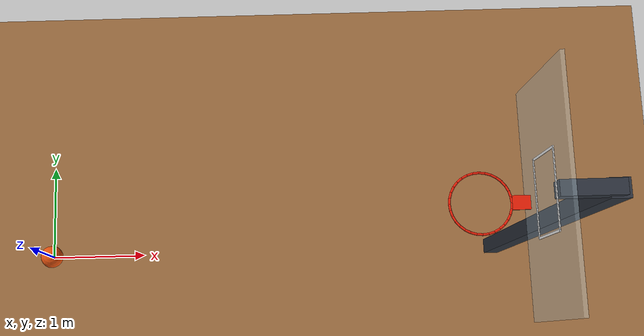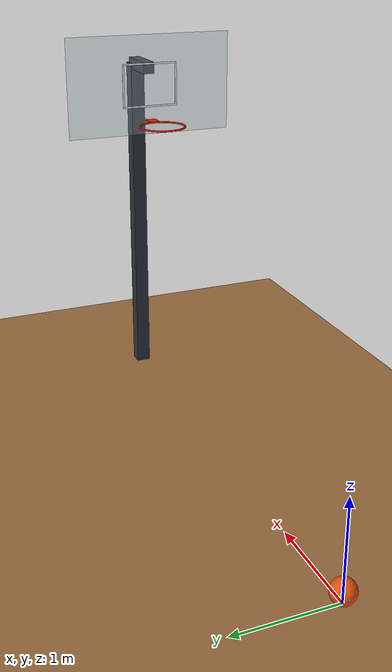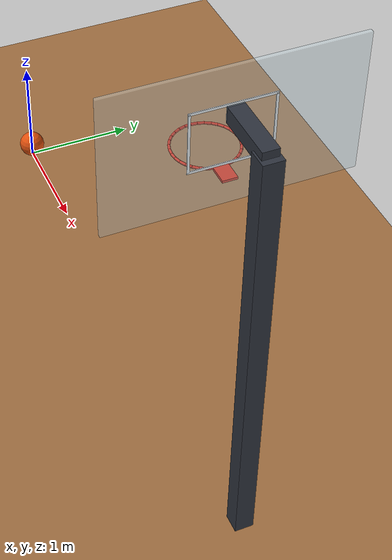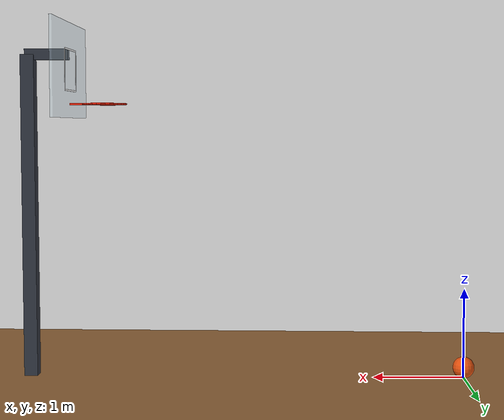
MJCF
<mujoco model="regulation_basketball_shot">
  <compiler angle="radian" autolimits="true"/>
  <option timestep="0.002" gravity="0 0 -9.81" integrator="implicitfast" cone="elliptic" solver="Newton" iterations="100" tolerance="1e-10" noslip_iterations="10"/>
  <visual>
    <global azimuth="120" elevation="-20"/>
    <headlight ambient="0.35 0.35 0.35" diffuse="0.65 0.65 0.65" specular="0.2 0.2 0.2"/>
  </visual>

  <worldbody>
    <light name="court_light" pos="2 -4 8" dir="0.2 0.3 -1" directional="true"/>
    <camera name="shot_view" pos="7 -11 6" xyaxes="0.939793 0.341743 0 -0.125861 0.346119 0.929755"/>

    <geom name="floor" type="plane" pos="0 0 0" size="12 8 0.1" condim="6" friction="0.9 0.01 0.02" rgba="0.62 0.43 0.25 1"/>

    <!-- Men's regulation-size basketball: 0.754 m circumference, 0.624 kg. -->
    <body name="ball" pos="0 0 0.12">
      <freejoint name="ball_free"/>
      <geom name="ball" type="sphere" size="0.12" mass="0.624" condim="6" friction="0.9 0.01 0.02" rgba="0.9 0.32 0.055 1"/>
    </body>

    <!-- Rim center is 4 m from the launch point and 3.05 m above the floor. -->
    <!-- Capsule centerline radius 0.2381 m; tube radius 0.0095 m. -->
    <body name="hoop" pos="4 0 3.05">
      <geom name="rim_00" type="capsule" fromto="0.238100 0 0 0.233525 0.046451 0" size="0.0095" rgba="0.9 0.12 0.025 1"/>
      <geom name="rim_01" type="capsule" fromto="0.233525 0.046451 0 0.219976 0.091117 0" size="0.0095" rgba="0.9 0.12 0.025 1"/>
      <geom name="rim_02" type="capsule" fromto="0.219976 0.091117 0 0.197973 0.132281 0" size="0.0095" rgba="0.9 0.12 0.025 1"/>
      <geom name="rim_03" type="capsule" fromto="0.197973 0.132281 0 0.168362 0.168362 0" size="0.0095" rgba="0.9 0.12 0.025 1"/>
      <geom name="rim_04" type="capsule" fromto="0.168362 0.168362 0 0.132281 0.197973 0" size="0.0095" rgba="0.9 0.12 0.025 1"/>
      <geom name="rim_05" type="capsule" fromto="0.132281 0.197973 0 0.091117 0.219976 0" size="0.0095" rgba="0.9 0.12 0.025 1"/>
      <geom name="rim_06" type="capsule" fromto="0.091117 0.219976 0 0.046451 0.233525 0" size="0.0095" rgba="0.9 0.12 0.025 1"/>
      <geom name="rim_07" type="capsule" fromto="0.046451 0.233525 0 0 0.238100 0" size="0.0095" rgba="0.9 0.12 0.025 1"/>
      <geom name="rim_08" type="capsule" fromto="0 0.238100 0 -0.046451 0.233525 0" size="0.0095" rgba="0.9 0.12 0.025 1"/>
      <geom name="rim_09" type="capsule" fromto="-0.046451 0.233525 0 -0.091117 0.219976 0" size="0.0095" rgba="0.9 0.12 0.025 1"/>
      <geom name="rim_10" type="capsule" fromto="-0.091117 0.219976 0 -0.132281 0.197973 0" size="0.0095" rgba="0.9 0.12 0.025 1"/>
      <geom name="rim_11" type="capsule" fromto="-0.132281 0.197973 0 -0.168362 0.168362 0" size="0.0095" rgba="0.9 0.12 0.025 1"/>
      <geom name="rim_12" type="capsule" fromto="-0.168362 0.168362 0 -0.197973 0.132281 0" size="0.0095" rgba="0.9 0.12 0.025 1"/>
      <geom name="rim_13" type="capsule" fromto="-0.197973 0.132281 0 -0.219976 0.091117 0" size="0.0095" rgba="0.9 0.12 0.025 1"/>
      <geom name="rim_14" type="capsule" fromto="-0.219976 0.091117 0 -0.233525 0.046451 0" size="0.0095" rgba="0.9 0.12 0.025 1"/>
      <geom name="rim_15" type="capsule" fromto="-0.233525 0.046451 0 -0.238100 0 0" size="0.0095" rgba="0.9 0.12 0.025 1"/>
      <geom name="rim_16" type="capsule" fromto="-0.238100 0 0 -0.233525 -0.046451 0" size="0.0095" rgba="0.9 0.12 0.025 1"/>
      <geom name="rim_17" type="capsule" fromto="-0.233525 -0.046451 0 -0.219976 -0.091117 0" size="0.0095" rgba="0.9 0.12 0.025 1"/>
      <geom name="rim_18" type="capsule" fromto="-0.219976 -0.091117 0 -0.197973 -0.132281 0" size="0.0095" rgba="0.9 0.12 0.025 1"/>
      <geom name="rim_19" type="capsule" fromto="-0.197973 -0.132281 0 -0.168362 -0.168362 0" size="0.0095" rgba="0.9 0.12 0.025 1"/>
      <geom name="rim_20" type="capsule" fromto="-0.168362 -0.168362 0 -0.132281 -0.197973 0" size="0.0095" rgba="0.9 0.12 0.025 1"/>
      <geom name="rim_21" type="capsule" fromto="-0.132281 -0.197973 0 -0.091117 -0.219976 0" size="0.0095" rgba="0.9 0.12 0.025 1"/>
      <geom name="rim_22" type="capsule" fromto="-0.091117 -0.219976 0 -0.046451 -0.233525 0" size="0.0095" rgba="0.9 0.12 0.025 1"/>
      <geom name="rim_23" type="capsule" fromto="-0.046451 -0.233525 0 0 -0.238100 0" size="0.0095" rgba="0.9 0.12 0.025 1"/>
      <geom name="rim_24" type="capsule" fromto="0 -0.238100 0 0.046451 -0.233525 0" size="0.0095" rgba="0.9 0.12 0.025 1"/>
      <geom name="rim_25" type="capsule" fromto="0.046451 -0.233525 0 0.091117 -0.219976 0" size="0.0095" rgba="0.9 0.12 0.025 1"/>
      <geom name="rim_26" type="capsule" fromto="0.091117 -0.219976 0 0.132281 -0.197973 0" size="0.0095" rgba="0.9 0.12 0.025 1"/>
      <geom name="rim_27" type="capsule" fromto="0.132281 -0.197973 0 0.168362 -0.168362 0" size="0.0095" rgba="0.9 0.12 0.025 1"/>
      <geom name="rim_28" type="capsule" fromto="0.168362 -0.168362 0 0.197973 -0.132281 0" size="0.0095" rgba="0.9 0.12 0.025 1"/>
      <geom name="rim_29" type="capsule" fromto="0.197973 -0.132281 0 0.219976 -0.091117 0" size="0.0095" rgba="0.9 0.12 0.025 1"/>
      <geom name="rim_30" type="capsule" fromto="0.219976 -0.091117 0 0.233525 -0.046451 0" size="0.0095" rgba="0.9 0.12 0.025 1"/>
      <geom name="rim_31" type="capsule" fromto="0.233525 -0.046451 0 0.238100 0 0" size="0.0095" rgba="0.9 0.12 0.025 1"/>
      <geom name="rim_mount" type="box" pos="0.31 0 0" size="0.071 0.055 0.0095" rgba="0.9 0.12 0.025 1"/>
    </body>

    <body name="backboard" pos="4.396 0 3.425">
      <geom name="backboard_panel" type="box" size="0.015 0.9 0.525" rgba="0.8 0.9 0.95 0.35"/>
      <geom name="backboard_target_left" type="box" pos="-0.017 -0.295 0" size="0.003 0.009 0.225" rgba="1 1 1 1"/>
      <geom name="backboard_target_right" type="box" pos="-0.017 0.295 0" size="0.003 0.009 0.225" rgba="1 1 1 1"/>
      <geom name="backboard_target_top" type="box" pos="-0.017 0 0.225" size="0.003 0.304 0.009" rgba="1 1 1 1"/>
      <geom name="backboard_target_bottom" type="box" pos="-0.017 0 -0.225" size="0.003 0.304 0.009" rgba="1 1 1 1"/>
    </body>

    <body name="stand" pos="4.85 0 0">
      <geom name="stand_post" type="box" pos="0 0 1.8" size="0.075 0.075 1.8" rgba="0.18 0.2 0.24 1"/>
      <geom name="stand_arm" type="box" pos="-0.21 0 3.6" size="0.24 0.06 0.06" rgba="0.18 0.2 0.24 1"/>
    </body>
  </worldbody>

  <!-- Dissipative landing and rolling resistance let the ball settle before 6 s. -->
  <contact>
    <pair name="ball_floor_contact" geom1="ball" geom2="floor" condim="6" friction="0.9 0.9 0.01 0.02 0.02" solref="0.01 1" solimp="0.95 0.99 0.001"/>
  </contact>

  <!-- Ballistic launch; descending rim crossing occurs at approximately 1.333 s. -->
  <keyframe>
    <key name="start" time="0" qpos="0 0 0.12 1 0 0 0" qvel="3 0 8.74731 0 0 0"/>
  </keyframe>
</mujoco>
